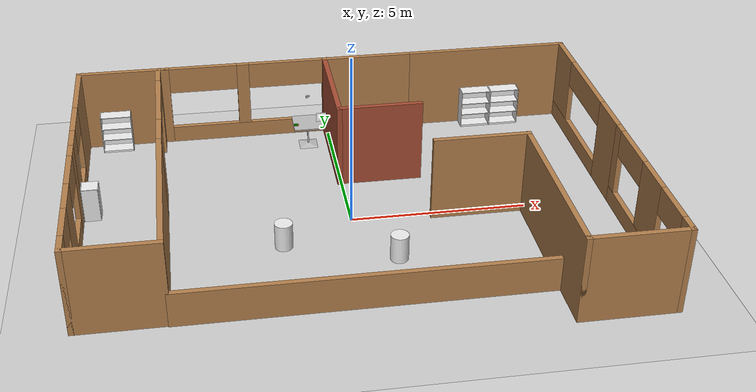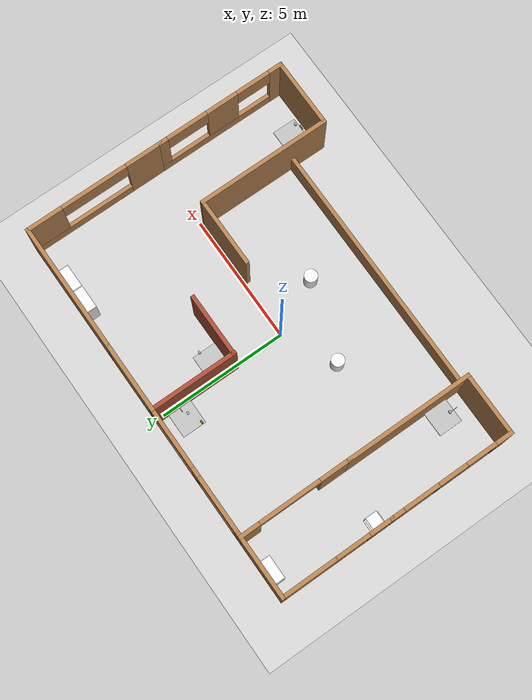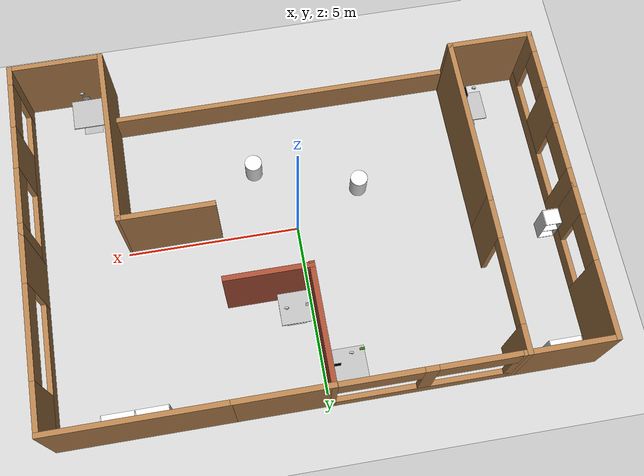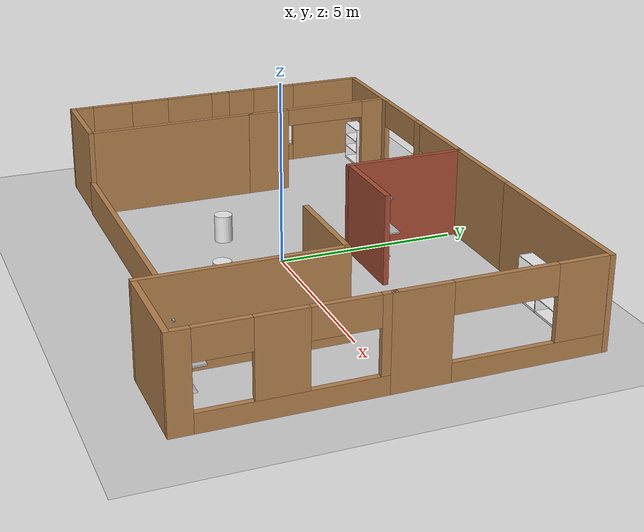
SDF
<sdf version='1.4'>
  <world name='default'>
    <!-- A global light source -->
    <include>
      <uri>model://sun</uri>
    </include>

    <!-- A ground plane -->
    <include>
      <uri>model://ground_plane</uri>
    </include>

    <physics type="ode">
      <real_time_update_rate>1000.0</real_time_update_rate>
      <max_step_size>0.001</max_step_size>
      <real_time_factor>1</real_time_factor>
      <ode>
        <solver>
          <type>quick</type>
          <iters>150</iters>
          <precon_iters>0</precon_iters>
          <sor>1.400000</sor>
          <use_dynamic_moi_rescaling>1</use_dynamic_moi_rescaling>
        </solver>
        <constraints>
          <cfm>0.00001</cfm>
          <erp>0.2</erp>
          <contact_max_correcting_vel>2000.000000</contact_max_correcting_vel>
          <contact_surface_layer>0.01000</contact_surface_layer>
        </constraints>
      </ode>
    </physics>

  <model name="marker_to_find">
    <include>
      <static>true</static>
      <uri>model://aruco_marker_0</uri>
    </include>
    <pose>-7.186030 1.111473 0.8183330 0 0 1.57</pose>
  </model>

  <model name="table_1_marker">
    <include>
      <static>true</static>
      <uri>model://aruco_marker_1</uri>
    </include>
    <pose>-5.700323 -3.155610 0.889384 0 0 1.57</pose>
  </model>

  <model name="table_2_marker">
    <include>
      <static>true</static>
      <uri>model://aruco_marker_2</uri>
    </include>
    <pose>-0.264755 4.42376 0.889384 0 0 3.14</pose>
  </model>

  <!-- Part on table 2 -->
  <model name="assembly_battery_green_0">
    <include>
      <static>false</static>
      <uri>model://assembly_battery_green_ariac</uri>
    </include>
    <pose>-1.093374 4.087609 0.889384 0 0 0</pose>
  </model>

  <model name="table_3_marker">
    <include>
      <static>true</static>
      <uri>model://aruco_marker_3</uri>
    </include>
    <pose>0.045670 2.6 0.889384 0 0 0</pose>
  </model>

  <model name="table_4_marker">
    <include>
      <static>true</static>
      <uri>model://aruco_marker_0</uri>
    </include>
    <pose>5.65 -4.903477 0.889384 0 0 1.57</pose>
  </model>

  <model name="logical_camera_1">
      <static>true</static>
      <pose>-5.739203 -2.837389 1.701710 3.141593 1.570792 0.0</pose>
      <plugin name="ros_logical_camera" filename="libROSLogicalCameraPlugin.so">
        <robotNamespace>logical_camera</robotNamespace>
        <position_noise>
          <noise>
            <type>gaussian</type>
            <mean>0.0</mean>
            <stddev>0.001</stddev>
          </noise>
        </position_noise>
        <orientation_noise>
          <noise>
            <type>gaussian</type>
            <mean>0.0</mean>
            <stddev>0.01</stddev>
          </noise>
        </orientation_noise>
        <known_model_types>
          <type>assembly_battery_red_ariac</type>
          <type>assembly_battery_green_ariac</type>
          <type>assembly_battery_blue_ariac</type>
          <type>assembly_pump_red_ariac</type>
          <type>assembly_pump_green_ariac</type>
          <type>assembly_pump_blue_ariac</type>
        </known_model_types>
        <anonymize_models>false</anonymize_models>
        <activation_topic>/ariac/sensor_enable</activation_topic>
      </plugin>
      <link name="link">
        <gravity>false</gravity>
        <inertial>
          <mass>0.1</mass>
          <inertia>
            <ixx>0.000166667</ixx>
            <iyy>0.000166667</iyy>
            <izz>0.000166667</izz>
          </inertia>
        </inertial>

        <visual name="visual">
          <pose>0 0.02 0 0 0 -1.5708</pose>
          <geometry>
            <mesh>
              <uri>model://logical_camera_ariac/meshes/camera.dae</uri>
            </mesh>
          </geometry>
        </visual>

        <sensor name="logical_camera" type="logical_camera">
          <logical_camera>
            <near>0.2</near>
            <far>1.1</far>
            <horizontal_fov>1.5</horizontal_fov>
            <aspect_ratio>1.2</aspect_ratio>
          </logical_camera>

          <visualize>True</visualize>
          <always_on>true</always_on>
          <update_rate>10</update_rate>
        </sensor>
      </link>
    </model>

  <model name="logical_camera_2">
      <static>true</static>
      <pose>-0.703821 4.357522 1.701710 3.141593 1.570792 0.0</pose>
      <plugin name="ros_logical_camera" filename="libROSLogicalCameraPlugin.so">
        <robotNamespace>logical_camera</robotNamespace>
        <position_noise>
          <noise>
            <type>gaussian</type>
            <mean>0.0</mean>
            <stddev>0.001</stddev>
          </noise>
        </position_noise>
        <orientation_noise>
          <noise>
            <type>gaussian</type>
            <mean>0.0</mean>
            <stddev>0.01</stddev>
          </noise>
        </orientation_noise>
        <known_model_types>
          <type>assembly_battery_red</type>
          <type>assembly_battery_green</type>
          <type>assembly_battery_blue</type>
          <type>assembly_pump_red</type>
          <type>assembly_pump_green</type>
          <type>assembly_pump_blue</type>
        </known_model_types>
        <anonymize_models>false</anonymize_models>
        <activation_topic>/ariac/sensor_enable</activation_topic>
      </plugin>
      <link name="link">
        <gravity>false</gravity>
        <inertial>
          <mass>0.1</mass>
          <inertia>
            <ixx>0.000166667</ixx>
            <iyy>0.000166667</iyy>
            <izz>0.000166667</izz>
          </inertia>
        </inertial>

        <visual name="visual">
          <pose>0 0.02 0 0 0 -1.5708</pose>
          <geometry>
            <mesh>
              <uri>model://logical_camera_ariac/meshes/camera.dae</uri>
            </mesh>
          </geometry>
        </visual>

        <sensor name="logical_camera" type="logical_camera">
          <logical_camera>
            <near>0.2</near>
            <far>1.1</far>
            <horizontal_fov>1.5</horizontal_fov>
            <aspect_ratio>1.2</aspect_ratio>
          </logical_camera>

          <visualize>True</visualize>
          <always_on>true</always_on>
          <update_rate>10</update_rate>
        </sensor>
      </link>
    </model>

    <model name="logical_camera_3">
      <static>true</static>
      <pose>0.786694 2.865128 1.701710 3.141593 1.570792 0.0</pose>
      <plugin name="ros_logical_camera" filename="libROSLogicalCameraPlugin.so">
        <robotNamespace>logical_camera</robotNamespace>
        <position_noise>
          <noise>
            <type>gaussian</type>
            <mean>0.0</mean>
            <stddev>0.001</stddev>
          </noise>
        </position_noise>
        <orientation_noise>
          <noise>
            <type>gaussian</type>
            <mean>0.0</mean>
            <stddev>0.01</stddev>
          </noise>
        </orientation_noise>
        <known_model_types>
          <type>assembly_battery_red_ariac</type>
          <type>assembly_battery_green_ariac</type>
          <type>assembly_battery_blue_ariac</type>
          <type>assembly_pump_red_ariac</type>
          <type>assembly_pump_green_ariac</type>
          <type>assembly_pump_blue_ariac</type>
        </known_model_types>
        <anonymize_models>false</anonymize_models>
        <activation_topic>/ariac/sensor_enable</activation_topic>
      </plugin>
      <link name="link">
        <gravity>false</gravity>
        <inertial>
          <mass>0.1</mass>
          <inertia>
            <ixx>0.000166667</ixx>
            <iyy>0.000166667</iyy>
            <izz>0.000166667</izz>
          </inertia>
        </inertial>

        <visual name="visual">
          <pose>0 0.02 0 0 0 -1.5708</pose>
          <geometry>
            <mesh>
              <uri>model://logical_camera_ariac/meshes/camera.dae</uri>
            </mesh>
          </geometry>
        </visual>

        <sensor name="logical_camera" type="logical_camera">
          <logical_camera>
            <near>0.2</near>
            <far>1.1</far>
            <horizontal_fov>1.5</horizontal_fov>
            <aspect_ratio>1.2</aspect_ratio>
          </logical_camera>

          <visualize>True</visualize>
          <always_on>true</always_on>
          <update_rate>10</update_rate>
        </sensor>
      </link>
    </model>

  <model name="logical_camera_4">
      <static>true</static>
      <pose>5.623647 -4.567452 1.701710 3.141593 1.570792 0.0</pose>
      <plugin name="ros_logical_camera" filename="libROSLogicalCameraPlugin.so">
        <robotNamespace>logical_camera</robotNamespace>
        <position_noise>
          <noise>
            <type>gaussian</type>
            <mean>0.0</mean>
            <stddev>0.001</stddev>
          </noise>
        </position_noise>
        <orientation_noise>
          <noise>
            <type>gaussian</type>
            <mean>0.0</mean>
            <stddev>0.01</stddev>
          </noise>
        </orientation_noise>
        <known_model_types>
          <type>assembly_battery_red_ariac</type>
          <type>assembly_battery_green_ariac</type>
          <type>assembly_battery_blue_ariac</type>
          <type>assembly_pump_red_ariac</type>
          <type>assembly_pump_green_ariac</type>
          <type>assembly_pump_blue_ariac</type>
        </known_model_types>
        <anonymize_models>false</anonymize_models>
        <activation_topic>/ariac/sensor_enable</activation_topic>
      </plugin>
      <link name="link">
        <gravity>false</gravity>
        <inertial>
          <mass>0.1</mass>
          <inertia>
            <ixx>0.000166667</ixx>
            <iyy>0.000166667</iyy>
            <izz>0.000166667</izz>
          </inertia>
        </inertial>

        <visual name="visual">
          <pose>0 0.02 0 0 0 -1.5708</pose>
          <geometry>
            <mesh>
              <uri>model://logical_camera_ariac/meshes/camera.dae</uri>
            </mesh>
          </geometry>
        </visual>

        <sensor name="logical_camera" type="logical_camera">
          <logical_camera>
            <near>0.2</near>
            <far>1.1</far>
            <horizontal_fov>1.5</horizontal_fov>
            <aspect_ratio>1.2</aspect_ratio>
          </logical_camera>

          <visualize>True</visualize>
          <always_on>true</always_on>
          <update_rate>10</update_rate>
        </sensor>
      </link>
    </model>

    <include>
      <uri>model://house</uri>
    </include>

    <scene>
      <ambient>0.4 0.4 0.4 1</ambient>
      <background>0.7 0.7 0.7 1</background>
      <shadows>true</shadows>
    </scene>

    <gui fullscreen='0'>
      <camera name='user_camera'>
        <pose frame=''>-2.59929 -10.2985 12.5136 0 0.861798 1.34159</pose>
        <view_controller>orbit</view_controller>
      </camera>
    </gui>
  </world>
</sdf>

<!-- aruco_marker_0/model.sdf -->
<sdf version='1.6'>
  <model name='aruco_marker_0'>
    <link name='link_0'>
      <pose frame=''>0 0 0 0 -0 0</pose>
      <inertial>
        <mass>1</mass>
        <inertia>
          <ixx>0</ixx>
          <ixy>0</ixy>
          <ixz>0</ixz>
          <iyy>0</iyy>
          <iyz>0</iyz>
          <izz>0</izz>
        </inertia>
      </inertial>
      <visual name='visual'>
        <pose frame=''>0 0 0 0 -0 0</pose>
        <geometry>
          <mesh>
            <uri>file://isr-testbed/aruco_marker_0/aruco_marker_0.dae</uri>
            <scale>0.1 0.1 0.1</scale>
          </mesh>
        </geometry>
        <material>
          <lighting>1</lighting>
          <script>
            <uri>file://media/materials/scripts/gazebo.material</uri>
            <name>Gazebo/DepthMapVS</name>
          </script>
          <ambient>0.3 0.3 0.3 1</ambient>
          <diffuse>0.7 0.7 0.7 1</diffuse>
          <specular>0.01 0.01 0.01 1</specular>
          <emissive>0 0 0 1</emissive>
        </material>
        <transparency>0</transparency>
        <cast_shadows>1</cast_shadows>
      </visual>
      <collision name='collision'>
        <laser_retro>0</laser_retro>
        <max_contacts>10</max_contacts>
        <pose frame=''>0 0 0 0 -0 0</pose>
        <geometry>
          <mesh>
            <uri>file://isr-testbed/aruco_marker_0/aruco_marker_0.dae</uri>
            <scale>0.1 0.1 0.1</scale>
          </mesh>
        </geometry>
        <surface>
          <friction>
            <ode>
              <mu>1</mu>
              <mu2>1</mu2>
              <fdir1>0 0 0</fdir1>
              <slip1>0</slip1>
              <slip2>0</slip2>
            </ode>
            <torsional>
              <coefficient>1</coefficient>
              <patch_radius>0</patch_radius>
              <surface_radius>0</surface_radius>
              <use_patch_radius>1</use_patch_radius>
              <ode>
                <slip>0</slip>
              </ode>
            </torsional>
          </friction>
          <bounce>
            <restitution_coefficient>0</restitution_coefficient>
            <threshold>1e+06</threshold>
          </bounce>
          <contact>
            <collide_without_contact>0</collide_without_contact>
            <collide_without_contact_bitmask>1</collide_without_contact_bitmask>
            <collide_bitmask>1</collide_bitmask>
            <ode>
              <soft_cfm>0</soft_cfm>
              <soft_erp>0.2</soft_erp>
              <kp>1e+13</kp>
              <kd>1</kd>
              <max_vel>0.01</max_vel>
              <min_depth>0</min_depth>
            </ode>
            <bullet>
              <split_impulse>1</split_impulse>
              <split_impulse_penetration_threshold>-0.01</split_impulse_penetration_threshold>
              <soft_cfm>0</soft_cfm>
              <soft_erp>0.2</soft_erp>
              <kp>1e+13</kp>
              <kd>1</kd>
            </bullet>
          </contact>
        </surface>
      </collision>
    </link>
    <static>1</static>
    <allow_auto_disable>1</allow_auto_disable>
  </model>
</sdf>

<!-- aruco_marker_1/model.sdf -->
<sdf version="1.9">
  <model name="aruco_marker_1">
    <static>true</static>

    <link name="link">
      <visual name="front">
        <pose>0 0 0 0 0 0</pose>
        <geometry>
          <box>
            <size>0.35 0.002 0.35</size>
          </box>
        </geometry>

        <material>
          <ambient>1 1 1 1</ambient>
          <diffuse>1 1 1 1</diffuse>
          <specular>0.1 0.1 0.1 1</specular>
          <emissive>0 0 0 1</emissive>

          <pbr>
            <metal>
              <albedo_map>
                model://aruco/aruco_marker_1/materials/textures/marker_1.png
              </albedo_map>
              <emissive_map>
                model://aruco/aruco_marker_1/materials/textures/marker_1.png
              </emissive_map>
            </metal>
          </pbr>
        </material>
      </visual>

      <visual name="back">
        <pose>0 -0.002 0 0 0 3.1416</pose>
        <geometry>
          <box>
            <size>0.35 0.002 0.35</size>
          </box>
        </geometry>
        <material>
          <ambient>0 0 0 1</ambient>
          <diffuse>0 0 0 1</diffuse>
        </material>
      </visual>

    </link>

  </model>
</sdf>

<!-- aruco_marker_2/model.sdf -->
<sdf version="1.9">
  <model name="aruco_marker_2">
    <static>true</static>

    <link name="link">
      <visual name="front">
        <pose>0 0 0 0 0 0</pose>
        <geometry>
          <box>
            <size>0.35 0.002 0.35</size>
          </box>
        </geometry>

        <material>
          <ambient>1 1 1 1</ambient>
          <diffuse>1 1 1 1</diffuse>
          <specular>0.1 0.1 0.1 1</specular>
          <emissive>0 0 0 1</emissive>

          <pbr>
            <metal>
              <albedo_map>
                model://aruco/aruco_marker_2/materials/textures/marker_2.png
              </albedo_map>
              <emissive_map>
                model://aruco/aruco_marker_2/materials/textures/marker_2.png
              </emissive_map>
            </metal>
          </pbr>
        </material>
      </visual>

      <visual name="back">
        <pose>0 -0.002 0 0 0 3.1416</pose>
        <geometry>
          <box>
            <size>0.35 0.002 0.35</size>
          </box>
        </geometry>
        <material>
          <ambient>0 0 0 1</ambient>
          <diffuse>0 0 0 1</diffuse>
        </material>
      </visual>

    </link>

  </model>
</sdf>

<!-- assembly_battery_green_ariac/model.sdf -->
<sdf version="1.6">
  <model name="assembly_battery_green_ariac">
    <link name="link">
      <inertial>
        <pose>0 0 0.0004 0 0 0</pose>
        <mass>0.5</mass>
        <inertia>
          <ixx>0.0009</ixx>
          <ixy>0</ixy>
          <ixz>0</ixz>
          <iyy>0.0009</iyy>
          <iyz>0</iyz>
          <izz>0.0009</izz>
        </inertia>
      </inertial>
      <collision name='collision'>
        <pose frame=''>0 0 0 0 0 0</pose>
        <geometry>
            <mesh>
            <uri>model://assembly_battery_blue_ariac/meshes/assembly_battery.stl</uri>
            <scale>0.98 1.0 1.0</scale>
            </mesh>
          </geometry>
        <surface>
          <contact>
            <ode>
              <max_vel>0.1</max_vel>
              <min_depth>0.001</min_depth>
            </ode>
          </contact>
        </surface>
      </collision>
      <visual name="visual">
         <geometry>
           <mesh>
             <uri>model://assembly_battery_green_ariac/meshes/battery_part_green.dae</uri>
            <scale>0.98 1.0 1.0</scale>
           </mesh>
         </geometry>
       </visual>
    </link>
  </model>
</sdf>

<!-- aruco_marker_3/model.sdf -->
<sdf version="1.9">
  <model name="aruco_marker_3">
    <static>true</static>

    <link name="link">
      <visual name="front">
        <pose>0 0 0 0 0 0</pose>
        <geometry>
          <box>
            <size>0.35 0.002 0.35</size>
          </box>
        </geometry>

        <material>
          <ambient>1 1 1 1</ambient>
          <diffuse>1 1 1 1</diffuse>
          <specular>0.1 0.1 0.1 1</specular>
          <emissive>0 0 0 1</emissive>

          <pbr>
            <metal>
              <albedo_map>
                model://aruco/aruco_marker_3/materials/textures/marker_3.png
              </albedo_map>
              <emissive_map>
                model://aruco/aruco_marker_3/materials/textures/marker_3.png
              </emissive_map>
            </metal>
          </pbr>
        </material>
      </visual>

      <visual name="back">
        <pose>0 -0.002 0 0 0 3.1416</pose>
        <geometry>
          <box>
            <size>0.35 0.002 0.35</size>
          </box>
        </geometry>
        <material>
          <ambient>0 0 0 1</ambient>
          <diffuse>0 0 0 1</diffuse>
        </material>
      </visual>

    </link>

  </model>
</sdf>
